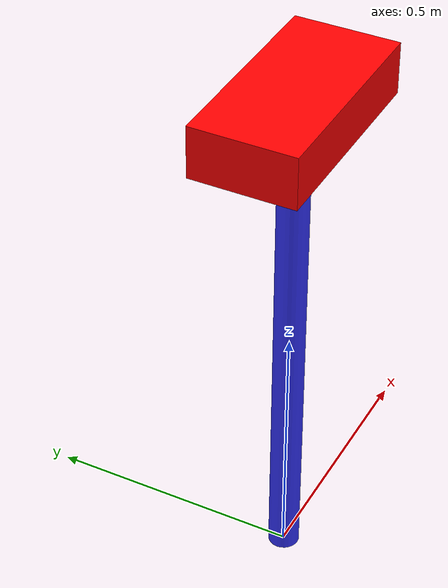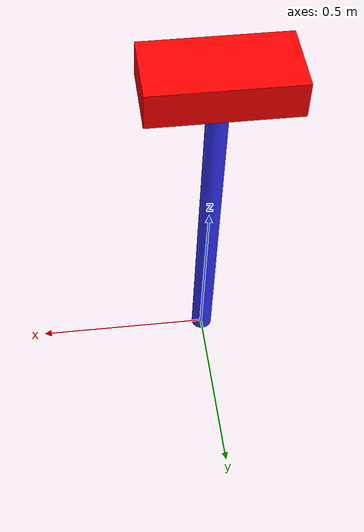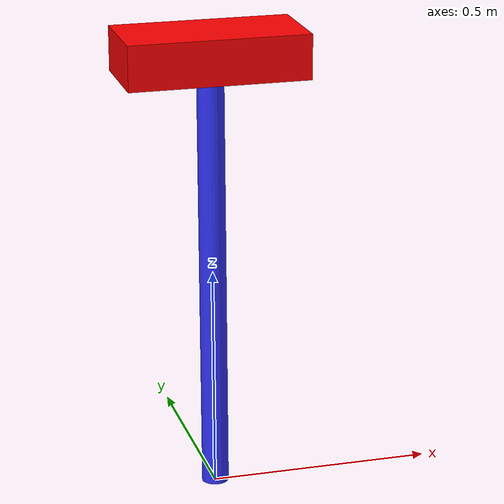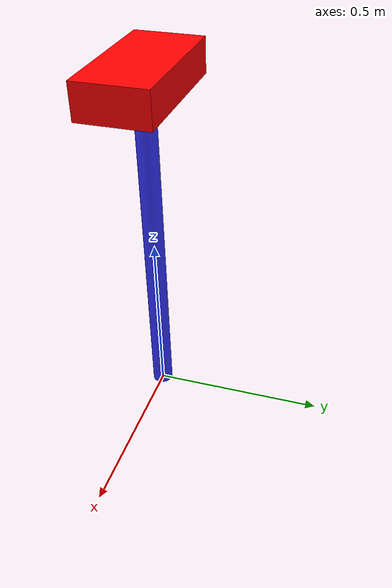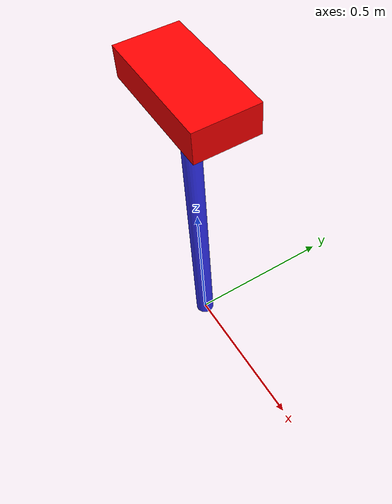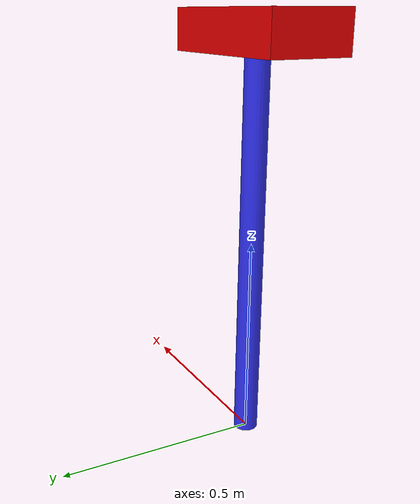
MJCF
<mujoco model="inverted_pendulum">
  <compiler angle="radian" coordinate="local"/>

  <option gravity="0 0 -9.81"/>

  <default>
    <geom type="cylinder" rgba="0.2 0.2 1 1" contype="1" conaffinity="1"/>
  </default>

  <worldbody>
    <!-- Base frame for pendulum -->
    <body name="base" pos="0 0 1.0">
      <!-- You can visualize the base if needed -->
      <geom type="box" size="0.2 0.1 0.05" rgba="1 0 0 1"/>

      <!-- Pendulum link -->
      <body name="pendulum_link" pos="0 0 0">
        <inertial pos="0 0 -0.5" mass="1.0" diaginertia="0.01 0.01 0.0001"/>
        <joint name="pivot" type="hinge" pos="0 0 0" axis="0 1 0" range="-3.14 3.14"/>
        <geom type="cylinder" size="0.03 0.5" pos="0 0 -0.5"/>
      </body>
    </body>
  </worldbody>

  <actuator>
    <motor joint="pivot" ctrlrange="-10 10"/>
  </actuator>
</mujoco>
